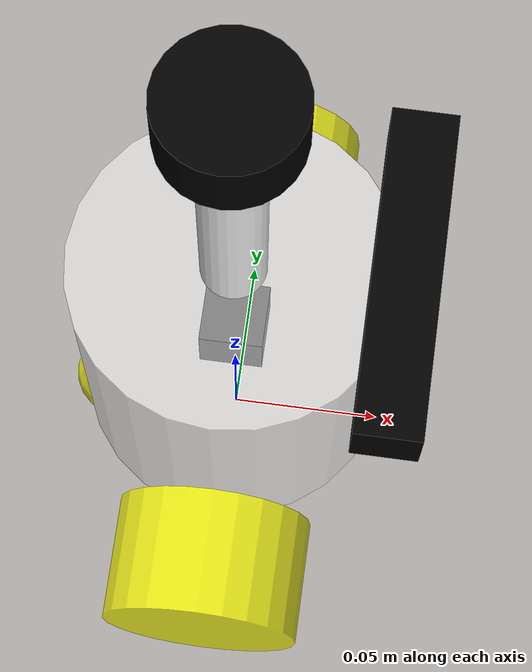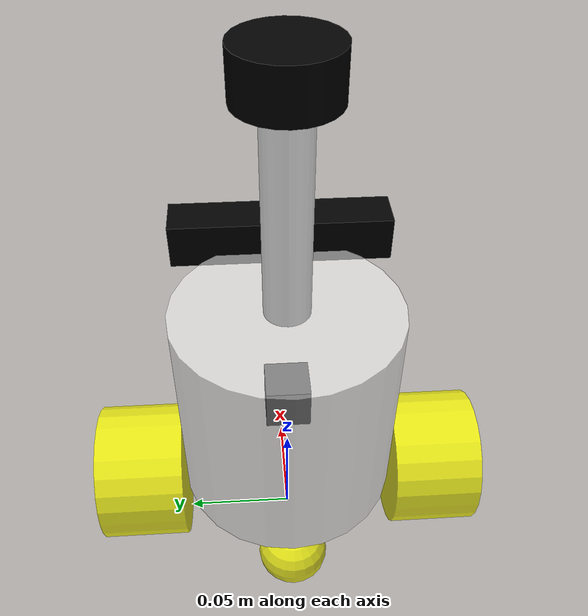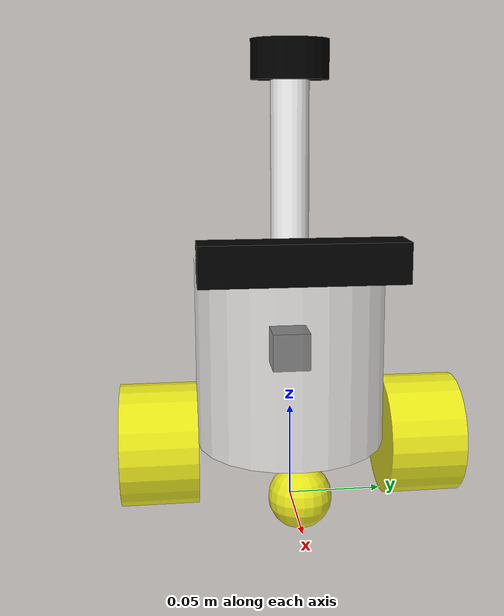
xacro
<?xml version="1.0"?>
<robot xmlns:xacro="http://www.ros.org/wiki/xacro" name="ronin_robot">
    <xacro:include filename="$(find robot_pkg)/urdf/robot/base.urdf.xacro" />
    <xacro:include filename="$(find robot_pkg)/urdf/robot/sensor/imu.urdf.xacro" />
    <xacro:include filename="$(find robot_pkg)/urdf/robot/sensor/camera.urdf.xacro" />
    <xacro:include filename="$(find robot_pkg)/urdf/robot/sensor/laser.urdf.xacro" />
    <xacro:include filename="$(find robot_pkg)/urdf/robot/actuator/wheel.urdf.xacro" />
    <xacro:include filename="$(find robot_pkg)/urdf/robot/actuator/caster.urdf.xacro" />
    <xacro:include filename="$(find robot_pkg)/urdf/robot/plugins/gazebo_control.xacro" />
    <xacro:include filename="$(find robot_pkg)/urdf/robot/plugins/gazebo_sensor_plugins.xacro" />
    <xacro:include filename="$(find robot_pkg)/urdf/robot/robot.ros2_control.xacro" />
    <xacro:base_link length="0.1" radius="0.05" />
    <xacro:imu_link imu_name="imu" xyz_offset="0 0 0" />
    <xacro:camera_link  xyz_offset="0.05 0 0.055" />
    <xacro:laser_link  xyz_offset="0.0 0 0.1" />
    <xacro:wheel_link  wheel_name="right_wheel" xyz_offset="0.0 -0.07 -0.05" />
    <xacro:wheel_link  wheel_name="left_wheel" xyz_offset="0.0 0.07 -0.05" />
    <xacro:caster_link caster_name="front_caster" xyz_offset="0.04 0.0 -0.066" />
    <xacro:caster_link caster_name="back_caster" xyz_offset="-0.04 0.0 -0.066" />
    <!-- ros2 gazebo_plugin -->

    <xacro:gazebo_sensor_plugin />
    <!-- add gazebo_ros2_control plugin -->
    <xacro:robot_ros2_control />
</robot>

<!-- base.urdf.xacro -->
<robot xmlns:xacro="http://www.ros.org/wiki/xacro">
    <xacro:include filename="$(find robot_pkg)/urdf/robot/sensor/common_inertia.urdf.xacro"/>
    <xacro:macro name="base_link" params = "length radius">
        <!-- 虚拟部件 -->
        <link name="base_footprint" />

        <!-- 机器人模型 -->
        <link name="base_link">
            <visual>
                <origin xyz="0.0 0.0 0.0" rpy="0.0 0.0 0.0"/>
                <geometry>
                    <cylinder radius="${radius}" length="${length}"/>
                </geometry>
                <material name="white">
                    <color rgba="1.0 1.0 1.0 0.5"/>
                </material>
            </visual>
            <collision>
                <origin xyz="0.0 0.0 0.0" rpy="0.0 0.0 0.0"/>
                <geometry>
                    <cylinder radius="${radius}" length="${length}"/>
                </geometry>
                <material name="white">
                    <color rgba="1.0 1.0 1.0 0.5"/>
                </material>
            </collision>
            <xacro:cylinder_inertia m="1.0" r="${radius}" h="${length}" />
        </link>
        <joint name="base_footprint_joint" type="fixed">
            <origin xyz="0.0 0.0 ${length/2.0+0.033-0.001}" rpy="0.0 0.0 0.0"/>
            <parent link="base_footprint"/>
            <child link="base_link"/>
        </joint>
    </xacro:macro>
</robot>

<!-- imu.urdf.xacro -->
<robot xmlns:xacro="http://www.ros.org/wiki/xacro">
    <xacro:include filename="$(find robot_pkg)/urdf/robot/sensor/common_inertia.urdf.xacro"/>
    <xacro:macro name="imu_link" params = "imu_name xyz_offset">
        <link name="${imu_name}_link">
            <visual>
                <origin xyz="0.0 0.0 0.0" rpy="0.0 0.0 0.0"/>
                <geometry>
                    <box size="0.02 0.02 0.02"/>
                </geometry>
                <material name="black">
                    <color rgba="0.0 0.0 0.0 1.0"/>
                </material>
            </visual>
            <collision>
                <origin xyz="0.0 0.0 0.0" rpy="0.0 0.0 0.0"/>
                <geometry>
                    <box size="0.02 0.02 0.02"/>
                </geometry>
                <material name="black">
                    <color rgba="0.0 0.0 0.0 1.0"/>
                </material>
            </collision>
            <xacro:box_inertia m="0.2" w="0.02" h="0.02" d="0.02" />
        </link>
        <joint name="${imu_name}_joint" type="fixed">
            <parent link="base_link"/>
            <child link="${imu_name}_link"/>
            <origin xyz="${xyz_offset}" rpy="0.0 0.0 0.0"/>
        </joint>
    </xacro:macro>
</robot>

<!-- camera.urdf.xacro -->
<robot xmlns:xacro="http://www.ros.org/wiki/xacro">
    <xacro:include filename="$(find robot_pkg)/urdf/robot/sensor/common_inertia.urdf.xacro"/>
    <xacro:macro name="camera_link" params = "xyz_offset">
        <link name="camera_optical_link">

        </link>
        <link name="camera_link">
            <visual>
                <origin xyz="0.0 0.0 0.0" rpy="0.0 0.0 0.0"/>
                <geometry>
                    <box size="0.02 0.1 0.02"/>
                </geometry>
                <material name="black">
                    <color rgba="0.0 0.0 0.0 1.0"/>
                </material>
            </visual>
            <collision>
                <origin xyz="0.0 0.0 0.0" rpy="0.0 0.0 0.0"/>
                <geometry>
                    <box size="0.02 0.1 0.02"/>
                </geometry>
                <material name="black">
                    <color rgba="0.0 0.0 0.0 1.0"/>
                </material>
            </collision>
            <xacro:box_inertia m="0.1" w="0.02" h="0.1" d="0.02" />
        </link>
        <joint name="camera_joint" type="fixed">
            <parent link="base_link"/>
            <child link="camera_link"/>
            <origin xyz="${xyz_offset}" rpy="0.0 0.0 0.0"/>
        </joint>
        <joint name="camera_optical_joint" type="fixed">
            <parent link="camera_link"/>
            <child link="camera_optical_link"/>
            <origin xyz="${xyz_offset}" rpy="${-pi/2} 0.0 ${-pi/2}"/>
        </joint>
    </xacro:macro>
</robot>

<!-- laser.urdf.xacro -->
<robot xmlns:xacro="http://www.ros.org/wiki/xacro">
    <xacro:include filename="$(find robot_pkg)/urdf/robot/sensor/common_inertia.urdf.xacro"/>
    <xacro:macro name="laser_link" params = "xyz_offset">
        <link name="laser_link">
            <visual>
                <origin xyz="0.0 0.0 0.0" rpy="0.0 0.0 0.0"/>
                <geometry>
                    <cylinder radius="0.02" length="0.02"/>
                </geometry>
                <material name="black">
                    <color rgba="0.0 0.0 0.0 1.0"/>
                </material>
            </visual>
            <collision>
                <origin xyz="0.0 0.0 0.0" rpy="0.0 0.0 0.0"/>
                <geometry>
                    <cylinder radius="0.02" length="0.02"/>
                </geometry>
                <material name="black">
                    <color rgba="0.0 0.0 0.0 1.0"/>
                </material>
            </collision>
            <xacro:cylinder_inertia m="0.1" r="0.02" h="0.02" />
        </link>
        <!-- 雷达支撑杆 -->
        <link name="laser_cylinder_link">
            <visual>
                <origin xyz="0.0 0.0 0.0" rpy="0.0 0.0 0.0"/>
                <geometry>
                    <cylinder radius="0.01" length="0.1"/>
                </geometry>
                <material name="white">
                    <color rgba="1.0 1.0 1.0 1.0"/>
                </material>
            </visual>
            <collision>
                <origin xyz="0.0 0.0 0.0" rpy="0.0 0.0 0.0"/>
                <geometry>
                    <cylinder radius="0.01" length="0.1"/>
                </geometry>
                <material name="white">
                    <color rgba="1.0 1.0 1.0 1.0"/>
                </material>
            </collision>
            <xacro:cylinder_inertia m="0.05" r="0.01" h="0.1" />
        </link>

        <joint name="laser_joint" type="fixed">
            <parent link="laser_cylinder_link"/>
            <child link="laser_link"/>
            <origin xyz="0.0 0.0 0.05" rpy="0.0 0.0 0.0"/>
        </joint>
        <joint name="laser_cylinder_joint" type="fixed">
            <parent link="base_link"/>
            <child link="laser_cylinder_link"/>
            <origin xyz="${xyz_offset}" rpy="0.0 0.0 0.0"/>
        </joint>
    </xacro:macro>
</robot>

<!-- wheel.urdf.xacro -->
<robot xmlns:xacro="http://www.ros.org/wiki/xacro">
    <xacro:include filename="$(find robot_pkg)/urdf/robot/sensor/common_inertia.urdf.xacro"/>
    <xacro:macro name="wheel_link" params = "wheel_name xyz_offset">
        <link name="${wheel_name}_link">
            <visual>
                <origin xyz="0.0 0.0 0.0" rpy="1.57079 0.0 0.0"/>
                <geometry>
                    <cylinder radius="0.032" length="0.04"/>
                </geometry>
                <material name="yellow">
                    <color rgba="1.0 1.0 0.0 0.8"/>
                </material>
            </visual>
            <collision>
                <origin xyz="0.0 0.0 0.0" rpy="1.57079 0.0 0.0"/>
                <geometry>
                    <cylinder radius="0.032" length="0.04"/>
                </geometry>
                <material name="yellow">
                    <color rgba="1.0 1.0 0.0 0.8"/>
                </material>
            </collision>
            <xacro:cylinder_inertia m="0.5" r="0.032" h="0.04" />
        </link>
        <joint name="${wheel_name}_joint" type="continuous">
            <parent link="base_link"/>
            <child link="${wheel_name}_link"/>
            <origin xyz="${xyz_offset}" rpy="0.0 0.0 0.0"/>
            <axis xyz="0 1 0"/>
        </joint>
        <!-- 添加gazebo插件 -->
        <gazebo reference="${wheel_name}_link">
            <mu1 value="20.0"/>
            <mu2 value="20.0"/>
            <kp value="1000000000.0"/>
            <kd value="1.0"/>
            <material>Gazebo/Yellow</material>
        </gazebo>
    </xacro:macro>
</robot>

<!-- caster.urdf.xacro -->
<robot xmlns:xacro="http://www.ros.org/wiki/xacro">
    <xacro:include filename="$(find robot_pkg)/urdf/robot/sensor/common_inertia.urdf.xacro"/>
    <xacro:macro name="caster_link" params = "caster_name xyz_offset">
        <link name="${caster_name}_link">
            <visual>
                <origin xyz="0.0 0.0 0.0" rpy="0.0 0.0 0.0"/>
                <geometry>
                    <sphere radius="0.016"/>
                </geometry>
                <material name="yellow">
                    <color rgba="1.0 1.0 0.0 0.8"/>
                </material>
            </visual>
            <collision>
                <origin xyz="0.0 0.0 0.0" rpy="0.0 0.0 0.0"/>
                <geometry>
                    <sphere radius="0.016"/>
                </geometry>
                <material name="yellow">
                    <color rgba="1.0 1.0 0.0 0.8"/>
                </material>
            </collision>
            <xacro:sphere_inertia m="0.3" r="0.016" />
        </link>
        <joint name="${caster_name}_joint" type="fixed">
            <parent link="base_link"/>
            <child link="${caster_name}_link"/>
            <origin xyz="${xyz_offset}" rpy="0.0 0.0 0.0"/>
        </joint>
        <gazebo reference="${caster_name}_link">
            <!-- mu1 切向摩擦，mu2 法向摩擦 kp 刚度 kd 阻尼 -->
            <mu1 value="0.0"/>
            <mu2 value="0.0"/>
            <kp value="1000000000.0"/>
            <kd value="1.0"/>
            <material>Gazebo/Black</material>
        </gazebo>
    </xacro:macro>
</robot>
